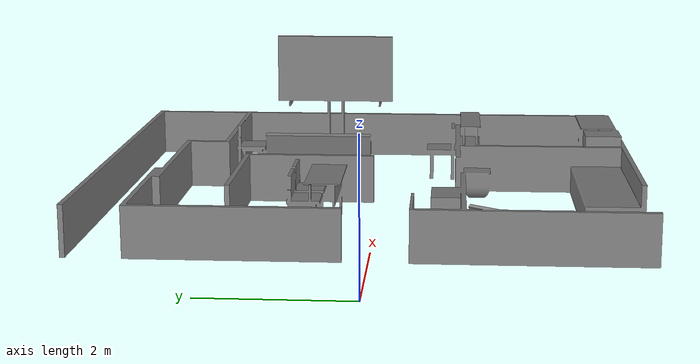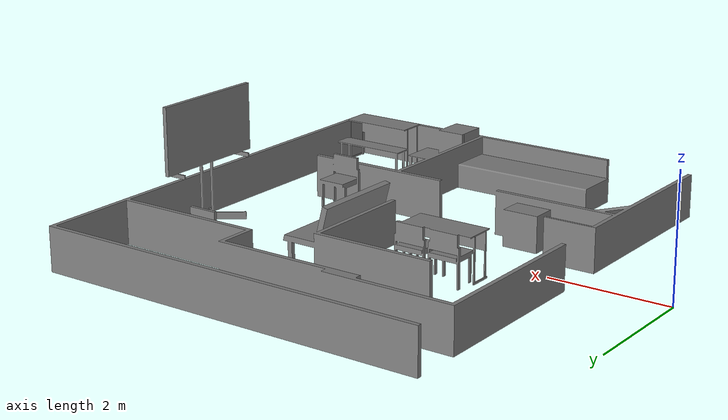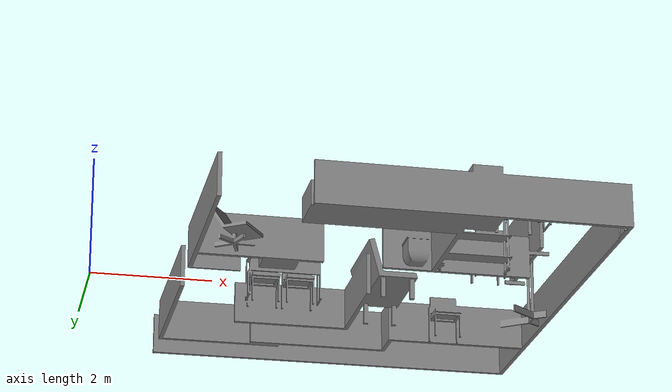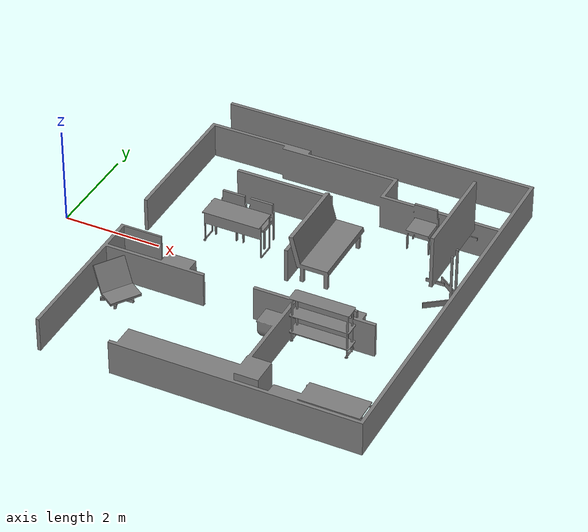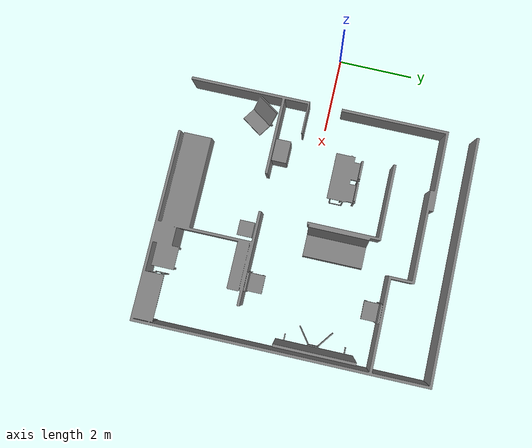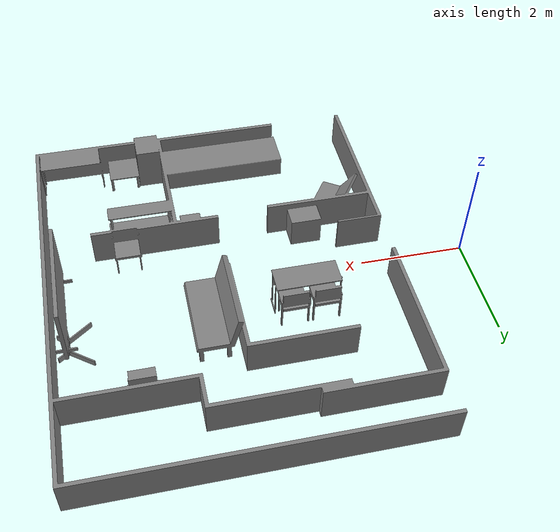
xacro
<?xml version="1.0"?>
<robot xmlns:xacro="http://ros.org/wiki/xacro" name="house">

  <!-- Define the mesh path and the scale as properties -->
  <xacro:property name="house_mesh" value="$(find frida_description)/urdf/meshes/TMR2025/house.STL"/>
  <xacro:property name="mesh_scale" value="0.001 0.001 0.001"/>  <!-- Scale property -->

  <link name="house_link">

    <!-- Visual using STL -->
    <visual>
      <origin xyz="0 0 0" rpy="0 0 0" />
      <geometry>
        <mesh filename="file://${house_mesh}" scale="${mesh_scale}"/>
      </geometry>
      <material name="gray">
        <color rgba="0.5 0.5 0.5 1"/>
      </material>
    </visual>

    <!-- Collision using the same mesh -->
    <collision>
      <geometry>
        <mesh filename="file://${house_mesh}" scale="${mesh_scale}"/>  <!-- Use the scale property -->
      </geometry>
    </collision>

    <!-- Inertial properties -->
    <inertial>
      <mass value="1.0"/>
      <origin xyz="0 0 0" rpy="0 0 0"/>
      <inertia
        ixx="0.001" ixy="0.0" ixz="0.0"
        iyy="0.001" iyz="0.0"
        izz="0.001"/>
    </inertial>

  </link>
  <link name="world" />
  <joint name="home_to_base" type="fixed">
    <parent link="world" />
    <child link="house_link" />
    <origin rpy="${3.14/2} 0 ${-3.14/2}" xyz="8 4 0" />
  </joint>

</robot>
